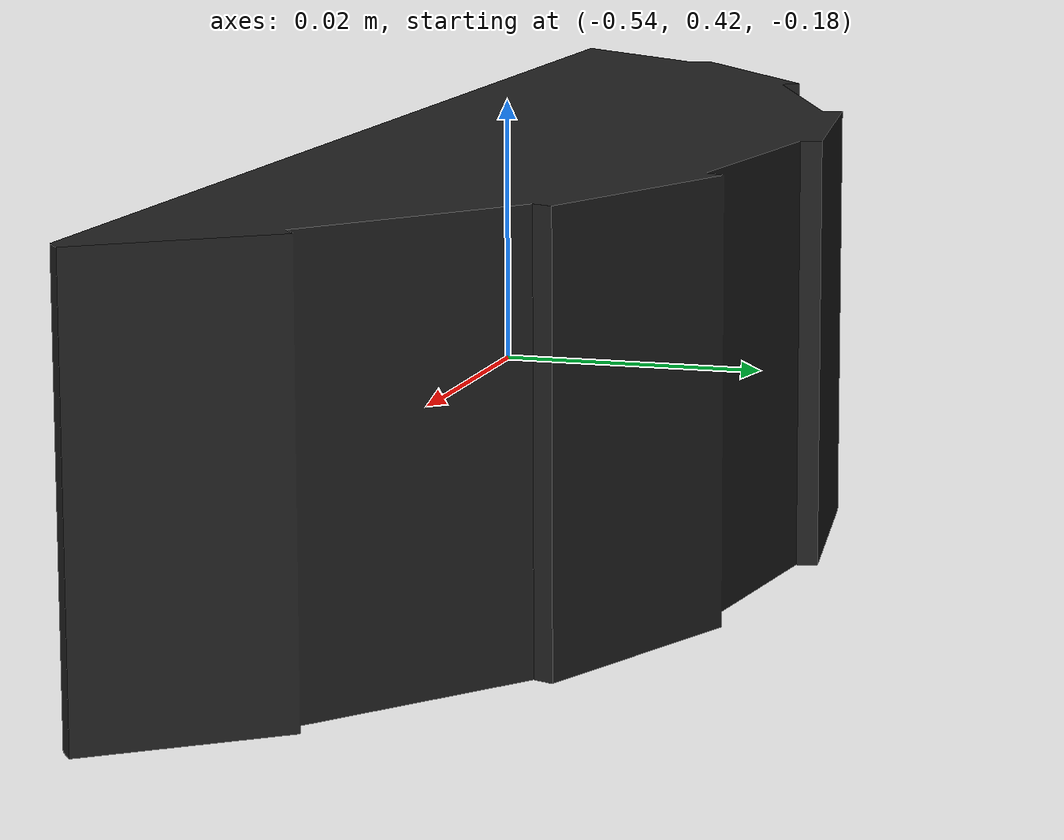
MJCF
<mujoco model="original-111">
  <default>
    <default class="visual">
      <geom group="2" type="mesh" contype="0" conaffinity="0"/>
    </default>
    <default class="collision">
      <geom group="3" type="mesh"/>
    </default>
  </default>
  <asset>
    <material name="material_0_0" specular="0.06666666666666667" shininess="0.03" rgba="0.13333333333333333 0.13333333333333333 0.13333333333333333 1"/>
    <mesh file="original-111.obj"/>
  </asset>
  <worldbody>
    <body name="original-111">
      <geom material="material_0_0" mesh="original-111" class="visual"/>
      <geom mesh="original-111" class="collision"/>
    </body>
  </worldbody>
</mujoco>
